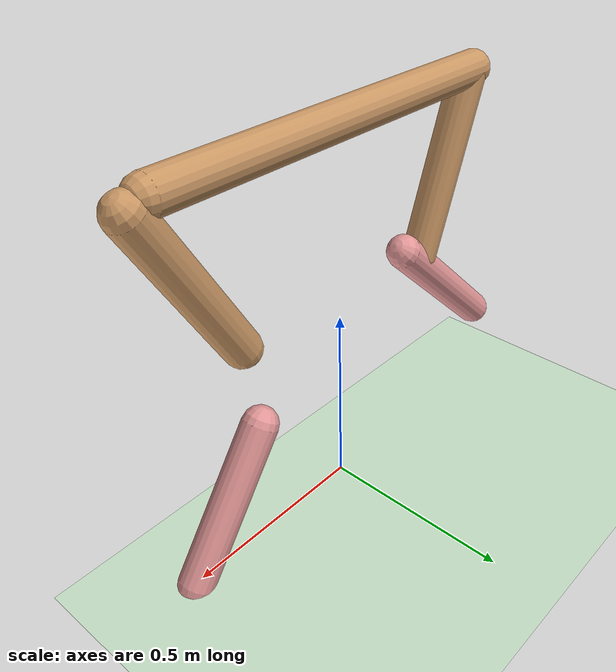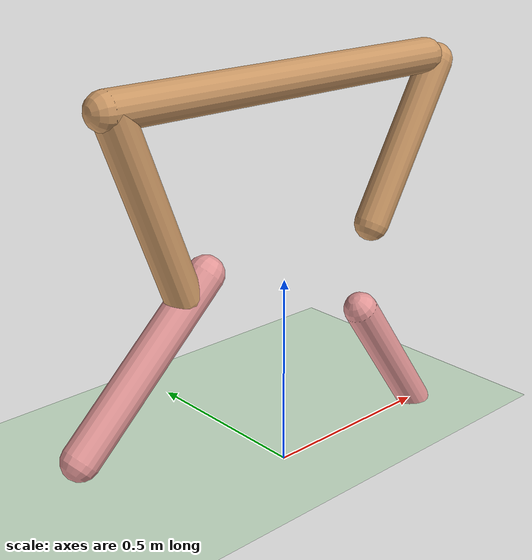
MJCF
<mujoco model="cheetah">
  <compiler angle="radian" coordinate="local" inertiafromgeom="true" settotalmass="14"/>
  <default>
    <joint armature=".1" damping=".01" limited="true" solimplimit="0 .8 .03" solreflimit=".02 1" stiffness="8"/>
    <geom conaffinity="0" condim="3" contype="1" friction=".4 .1 .1" rgba="0.8 0.6 .4 1" solimp="0.0 0.8 0.01" solref="0.02 1"/>
    <motor ctrllimited="true" ctrlrange="-1 1"/>
  </default>
  <size nstack="300000" nuser_geom="1"/>
  <option gravity="0 0 -9.81" timestep="0.01"/>
  <asset>
    <texture builtin="gradient" height="100" rgb1="1 1 1" rgb2="0 0 0" type="skybox" width="100"/>
    <texture builtin="flat" height="1278" mark="cross" markrgb="1 1 1" name="texgeom" random="0.01" rgb1="0.8 0.6 0.4" rgb2="0.8 0.6 0.4" type="cube" width="127"/>
    <texture builtin="checker" height="100" name="texplane" rgb1="0 0 0" rgb2="0.8 0.8 0.8" type="2d" width="100"/>
    <material name="MatPlane" reflectance="0.5" shininess="1" specular="1" texrepeat="60 60" texture="texplane"/>
    <material name="geom" texture="texgeom" texuniform="true"/>
  </asset>
  <worldbody>
    <light cutoff="100" diffuse="1 1 1" dir="-0 0 -1.3" directional="true" exponent="1" pos="0 0 1.3" specular=".1 .1 .1"/>
    <geom conaffinity="1" condim="3" material="MatPlane" name="floor" pos="0 0 0" rgba="0.8 0.9 0.8 1" size="40 40 40" type="plane"/>
    <body name="torso" pos="0 0 1.0">
      <camera name="track" mode="trackcom" pos="0 -3 0.3" xyaxes="1 0 0 0 0 1"/>
      <joint armature="0" axis="1 0 0" damping="0" limited="false" name="rootx" pos="0 0 0" stiffness="0" type="slide"/> <!-- Set initial velocity in x-direction -->
      <joint armature="0" axis="0 0 1" damping="0" limited="false" name="rootz" pos="0 0 0" stiffness="0" type="slide"/>
      <joint armature="0" axis="0 1 0" damping="0" limited="false" name="rooty" pos="0 0 0" stiffness="0" type="hinge"/>
      <geom fromto="-.5 0 0 .5 0 0" name="torso" size="0.046" type="capsule"/>
      <body name="bthigh" pos="-.5 0 0.0">
        <joint axis="0 1 0" damping="6" name="bthigh" pos="0 0 0" range="-.52 1.05" stiffness="240" type="hinge"/>
        <geom axisangle="0 1 0 -3.5" name="bthigh" pos=".1 0 -.23" size="0.046 .245" type="capsule"/>
        <body name="bshin" pos=".27 0 -.42">
          <joint axis="0 1 0" damping="4.5" name="bshin" pos="0 0 0" range="-.01 .01" stiffness="300" type="hinge"/>
          <geom axisangle="0 1 0 -2.33" name="bshin" pos="-0.2 0 -0.17" rgba="0.9 0.6 0.6 1" size="0.046 .25" type="capsule"/>
        </body>
      </body>
      <body name="fthigh" pos=".5 0 0">
        <joint axis="0 1 0" damping="4.5" name="fthigh" pos="0 0 0" range="-1 .7" stiffness="180" type="hinge"/>
        <geom axisangle="0 1 0 .52" name="fthigh" pos="-.07 0 -.22" size="0.046 .233" type="capsule"/>
        <body name="fshin" pos="-.19 0 -.44">
          <joint axis="0 1 0" damping="3" name="fshin" pos="0 0 0" range="-1.2 .87" stiffness="200" type="hinge"/>
          <geom axisangle="0 1 0 -.6" name="fshin" pos=".09 0 -.39" rgba="0.9 0.6 0.6 1" size="0.046 .21" type="capsule"/>
        </body>
      </body>
    </body>
  </worldbody>
  <actuator>
    <motor gear="120" joint="bthigh" name="bthigh"/>
    <motor gear="90" joint="bshin" name="bshin"/>
    <motor gear="120" joint="fthigh" name="fthigh"/>
    <motor gear="60" joint="fshin" name="fshin"/>
  </actuator>
</mujoco>
